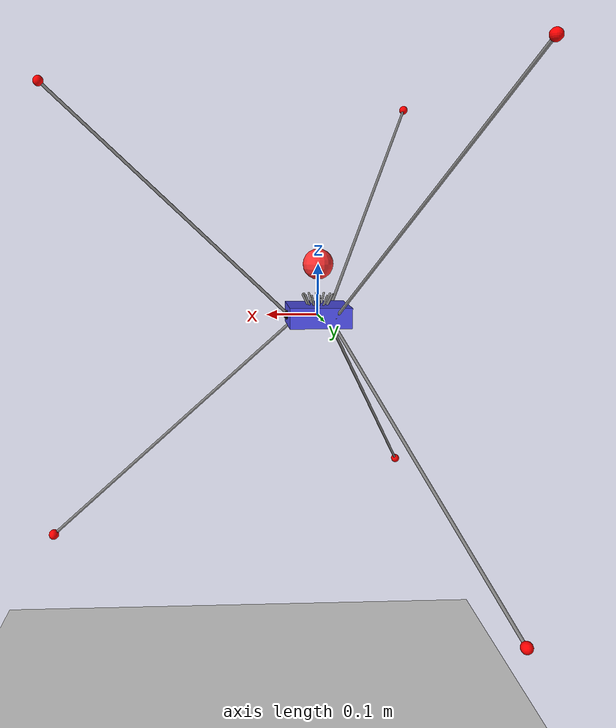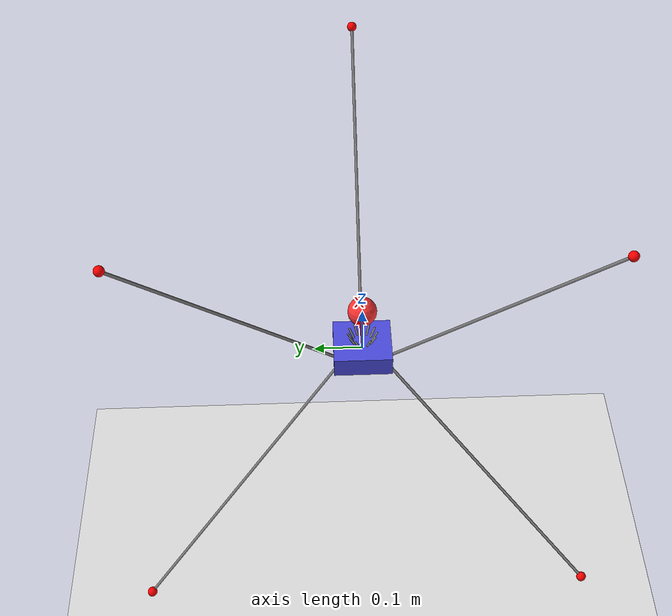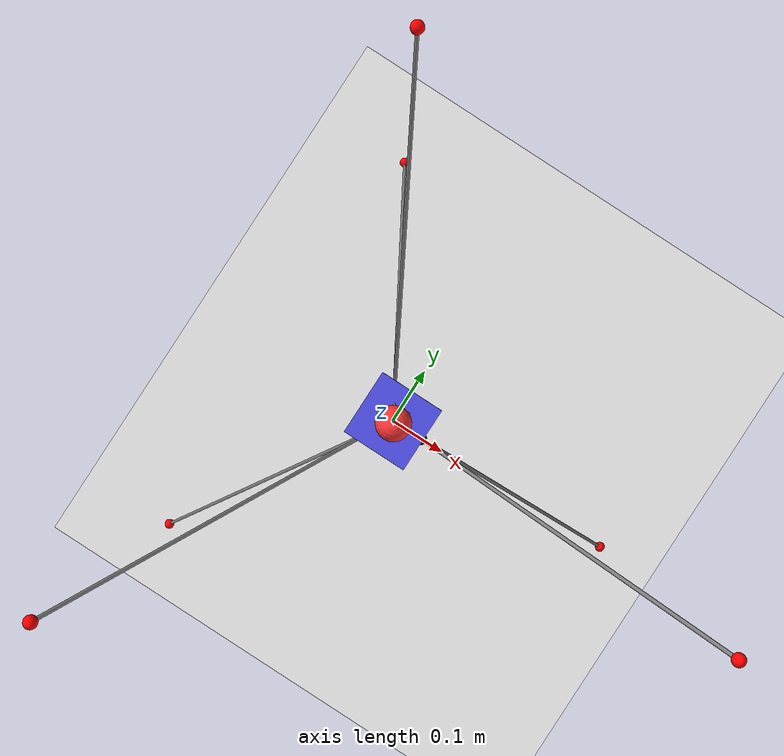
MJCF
<mujoco model="cable_robot_5dof">
  <option timestep="0.0002" gravity="0 0 -9.81" integrator="RK4" />
  <size njmax="2000" nconmax="2000" />

  <default>
    <joint damping="0.5" limited="false" />
    <geom density="500" friction="1 0.5 0.1" rgba="0.7 0.7 0.7 1" />
  </default>

  <worldbody>
    <geom type="plane" pos="0 0 -1.0" size="5 5 0.1" rgba="0.9 0.9 0.9 1" />

    <site name="a1" pos=" 0.530678  0.000000  0.445777" size="0.01" rgba="1 0 0 1" />
    <site name="a2" pos=" 0.530678  0.000000 -0.445777" size="0.01" rgba="1 0 0 1" />
    <site name="a3" pos="-0.265339  0.459581  0.445777" size="0.01" rgba="1 0 0 1" />
    <site name="a4" pos="-0.265339  0.459581 -0.445777" size="0.01" rgba="1 0 0 1" />
    <site name="a5" pos="-0.265339 -0.459581  0.445777" size="0.01" rgba="1 0 0 1" />
    <site name="a6" pos="-0.265339 -0.459581 -0.445777" size="0.01" rgba="1 0 0 1" />

    <body name="platform" pos="0 0 0">
      <joint name="jx" type="slide" axis="1 0 0" />
      <joint name="jy" type="slide" axis="0 1 0" />
      <joint name="jz" type="slide" axis="0 0 1" />
      <joint name="jroll" type="hinge" axis="1 0 0" />
      <joint name="jpitch" type="hinge" axis="0 1 0" />

      <geom name="platform_geom" type="box" size="0.06 0.06 0.02" rgba="0.3 0.3 0.9 1" />
      <inertial pos="0 0 0" mass="0.108" diaginertia="0.000152 0.000152 0.000254" />

      <site name="p1" pos=" 0.057905  0.000000  0.000000" size="0.01" rgba="0 0 0 1" />
      <site name="p2" pos=" 0.049384  0.000000 -0.011149" size="0.01" rgba="0 0 0 1" />
      <site name="p3" pos="-0.028952  0.050147  0.000000" size="0.01" rgba="0 0 0 1" />
      <site name="p4" pos="-0.024692  0.042768 -0.011149" size="0.01" rgba="0 0 0 1" />
      <site name="p5" pos="-0.028952 -0.050147  0.000000" size="0.01" rgba="0 0 0 1" />
      <site name="p6" pos="-0.024692 -0.042768 -0.011149" size="0.01" rgba="0 0 0 1" />

      <body name="cup" pos="0 0 0.04">
        <geom name="cup_wall_0"  type="capsule" fromto=" 0.030  0.000  0.000   0.015  0.000 -0.030" size="0.002" rgba="0.6 0.6 0.6 1"/>
        <geom name="cup_wall_1"  type="capsule" fromto=" 0.026  0.015  0.000   0.013  0.007 -0.030" size="0.002" rgba="0.6 0.6 0.6 1"/>
        <geom name="cup_wall_2"  type="capsule" fromto=" 0.015  0.026  0.000   0.007  0.013 -0.030" size="0.002" rgba="0.6 0.6 0.6 1"/>
        <geom name="cup_wall_3"  type="capsule" fromto=" 0.000  0.030  0.000   0.000  0.015 -0.030" size="0.002" rgba="0.6 0.6 0.6 1"/>
        <geom name="cup_wall_4"  type="capsule" fromto="-0.015  0.026  0.000  -0.007  0.013 -0.030" size="0.002" rgba="0.6 0.6 0.6 1"/>
        <geom name="cup_wall_5"  type="capsule" fromto="-0.026  0.015  0.000  -0.013  0.007 -0.030" size="0.002" rgba="0.6 0.6 0.6 1"/>
        <geom name="cup_wall_6"  type="capsule" fromto="-0.030  0.000  0.000  -0.015  0.000 -0.030" size="0.002" rgba="0.6 0.6 0.6 1"/>
        <geom name="cup_wall_7"  type="capsule" fromto="-0.026 -0.015  0.000  -0.013 -0.007 -0.030" size="0.002" rgba="0.6 0.6 0.6 1"/>
        <geom name="cup_wall_8"  type="capsule" fromto="-0.015 -0.026  0.000  -0.007 -0.013 -0.030" size="0.002" rgba="0.6 0.6 0.6 1"/>
        <geom name="cup_wall_9"  type="capsule" fromto=" 0.000 -0.030  0.000   0.000 -0.015 -0.030" size="0.002" rgba="0.6 0.6 0.6 1"/>
        <geom name="cup_wall_10" type="capsule" fromto=" 0.015 -0.026  0.000   0.007 -0.013 -0.030" size="0.002" rgba="0.6 0.6 0.6 1"/>
        <geom name="cup_wall_11" type="capsule" fromto=" 0.026 -0.015  0.000   0.013 -0.007 -0.030" size="0.002" rgba="0.6 0.6 0.6 1"/>
        <geom name="cup_floor" type="cylinder" pos="0 0 -0.030" size="0.012 0.001" rgba="0.5 0.5 0.5 1"/>
      </body>
    </body>

    <body name="ball" pos="0 0 0.1">
      <freejoint/>
      <inertial pos="0 0 0" mass="0.07" diaginertia="2e-5 2e-5 2e-5"/>
      <geom type="sphere" size="0.03" rgba="1 0.2 0.2 1" friction="1 0.005 0.001" solref="0.01 1.5" solimp="0.9 0.95 0.001"/>
    </body>
  </worldbody>

  <tendon>
    <spatial name="cable1" limited="false" range="0 1.3" stiffness="0" damping="0">
      <site site="a1"/>
      <site site="p1"/>
    </spatial>
    <spatial name="cable2" limited="false" range="0 1.3" stiffness="0" damping="0">
      <site site="a2"/>
      <site site="p2"/>
    </spatial>
    <spatial name="cable3" limited="false" range="0 1.3" stiffness="0" damping="0">
      <site site="a3"/>
      <site site="p3"/>
    </spatial>
    <spatial name="cable4" limited="false" range="0 1.3" stiffness="0" damping="0">
      <site site="a4"/>
      <site site="p4"/>
    </spatial>
    <spatial name="cable5" limited="false" range="0 1.3" stiffness="0" damping="0">
      <site site="a5"/>
      <site site="p5"/>
    </spatial>
    <spatial name="cable6" limited="false" range="0 1.3" stiffness="0" damping="0">
      <site site="a6"/>
      <site site="p6"/>
    </spatial>
  </tendon>
</mujoco>
